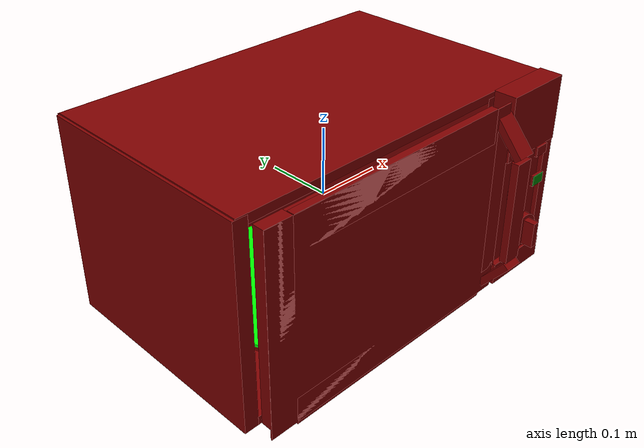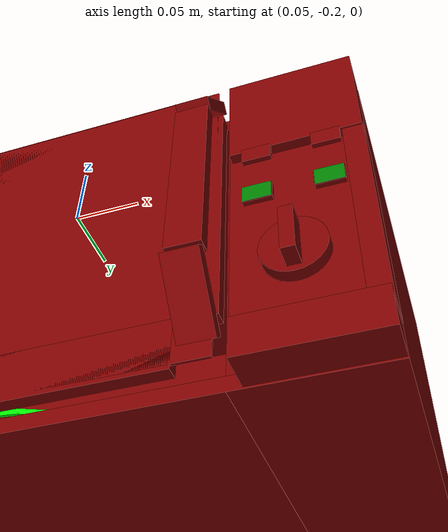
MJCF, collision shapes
<?xml version='1.0' encoding='UTF-8'?>
<mujoco model="model">
  <option timestep="0.002" gravity="0.0 0.0 -9.81"/>
  <compiler angle="radian"/>
  <asset>
    <mesh file="visuals/door.obj" name="door_vis"/>
    <mesh file="visuals/door_Clear.obj" name="door_Clear_vis"/>
    <mesh file="visuals/Body001.obj" name="Body001_vis"/>
    <mesh file="visuals/Button001.obj" name="Button001_vis"/>
    <mesh file="visuals/Button002.obj" name="Button002_vis"/>
    <mesh file="visuals/Button003.obj" name="Button003_vis"/>
    <mesh file="visuals/Button004.obj" name="Button004_vis"/>
    <mesh file="visuals/Disc001.obj" name="Disc001_vis"/>
    <mesh file="visuals/Knob001.obj" name="Knob001_vis"/>
    <texture file="visuals/T_BC001.png" name="Body001_material" type="2d"/>
    <material name="Body001_material" rgba="1 1 1 1.0" texture="Body001_material" shininess="0.4472135901451111" specular="0.5"/>
    <texture file="visuals/T_BC001.png" name="door_material" type="2d"/>
    <material name="door_material" rgba="1 1 1 1.0" texture="door_material" shininess="0.4472135901451111" specular="0.5"/>
    <texture file="visuals/T_BC001.png" name="door_Clear_material" type="2d"/>
    <material name="door_Clear_material" rgba="1 1 1 0.800000011920929" texture="door_Clear_material" shininess="0.5" specular="0.3103448502657381"/>
    <texture file="visuals/T_BC001.png" name="Button001_material" type="2d"/>
    <material name="Button001_material" rgba="1 1 1 1.0" texture="Button001_material" shininess="0.4472135901451111" specular="0.3103448502657381"/>
    <texture file="visuals/T_BC001.png" name="Button002_material" type="2d"/>
    <material name="Button002_material" rgba="1 1 1 1.0" texture="Button002_material" shininess="0.4472135901451111" specular="0.3103448502657381"/>
    <texture file="visuals/T_BC001.png" name="Button003_material" type="2d"/>
    <material name="Button003_material" rgba="1 1 1 1.0" texture="Button003_material" shininess="0.4472135901451111" specular="0.3103448502657381"/>
    <texture file="visuals/T_BC001.png" name="Button004_material" type="2d"/>
    <material name="Button004_material" rgba="1 1 1 1.0" texture="Button004_material" shininess="0.4472135901451111" specular="0.3103448502657381"/>
    <texture file="visuals/T_BC001.png" name="Disc001_material" type="2d"/>
    <material name="Disc001_material" rgba="1 1 1 1.0" texture="Disc001_material" shininess="0.4472135901451111" specular="0.3103448502657381"/>
    <texture file="visuals/T_BC001.png" name="Knob001_material" type="2d"/>
    <material name="Knob001_material" rgba="1 1 1 1.0" texture="Knob001_material" shininess="0.4472135901451111" specular="0.3103448502657381"/>
  </asset>
  <default>
    <default class="visual">
      <geom conaffinity="0" contype="0" group="1" type="mesh"/>
    </default>
    <default class="collision">
      <geom group="0" rgba="0.5 0 0 0.5"/>
    </default>
    <default class="spawn">
      <geom group="0" rgba="1 1 1 0.5" contype="0" conaffinity="0"/>
      <site group="0" rgba="1 1 1 0.5"/>
    </default>
    <default class="region">
      <geom group="1" conaffinity="0" contype="0" rgba="0 1 0 0"/>
    </default>
  </default>
  <worldbody>
    <body>
      <body name="object">
        <geom class="collision" type="box" pos="0.24530245 -0.18474417 -0.00084819" size="0.01147532183676958 0.00037641465314663947 0.007696379907429218" quat="1.0 0.0 0.0 0.0" name="stop_button" rgba="0.0 0.5 0 0.5"/>
        <geom class="collision" type="box" pos="0.18965234 -0.18474417 -0.00092461" size="0.01135633047670126 0.0003764147695619613 0.007696387358009815" quat="1.0 0.0 0.0 0.0" name="start_button" rgba="0.0 0.5 0 0.5"/>
        <geom class="collision" type="cylinder" pos="-0.04587882 0.00644161 -0.12600509" size="0.15269510447978973 0.002203373471274972" quat="1.0 0.0 0.0 0.0" name="tray" rgba="0 1 0 0.5"/>
        <geom mesh="Body001_vis" type="mesh" solimp="0.998 0.998 0.001" solref="0.001 1" friction="0.95 0.3 0.1" class="visual" material="Body001_material"/>
        <geom class="collision" type="box" pos="-0.00000033 0.02087716 -0.14168594" size="0.270497590303421 0.1695151925086975 0.006293192505836487" quat="1.0 0.0 0.0 0.0"/>
        <geom class="collision" type="box" pos="-0.26508177 0.02087716 -0.00042390" size="0.010282076895236969 0.1695151925086975 0.14755524694919586" quat="1.0 0.0 0.0 0.0"/>
        <geom class="collision" type="box" pos="0.21505618 0.02291021 -0.00219897" size="0.05994317680597305 0.17154823243618011 0.14578022062778473" quat="1.0 0.0 0.0 0.0"/>
        <geom class="collision" type="box" pos="-0.00100848 0.02087716 0.14228832" size="0.27037152647972107 0.1695151925086975 0.006612375378608704" quat="1.0 0.0 0.0 0.0"/>
        <geom class="collision" type="box" pos="0.22063820 -0.16458007 0.10133607" size="0.05399654433131218 0.017087683081626892 0.04787886515259743" quat="1.0 0.0 0.0 0.0"/>
        <geom class="collision" type="box" pos="0.22063820 -0.16458004 -0.13007501" size="0.05399654433131218 0.01708766631782055 0.01649109087884426" quat="1.0 0.0 0.0 0.0"/>
        <geom class="collision" type="box" pos="-0.00100848 0.18233631 -0.00044104" size="0.2703716456890106 0.012122089974582195 0.14753830432891846" quat="1.0 0.0 0.0 0.0"/>
        <geom class="collision" type="box" pos="0.26697474 -0.16409125 -0.03303166" size="0.008388441056013107 0.01605018973350525 0.08751650899648666" quat="1.0 0.0 0.0 0.0"/>
        <geom class="collision" type="box" pos="0.21887557 -0.16031169 -0.03033156" size="0.053996555507183075 0.012819316238164902 0.08907715976238251" quat="1.0 0.0 0.0 0.0"/>
        <geom class="collision" type="box" pos="-0.06366510 0.20426235 -0.00392596" size="0.1451033353805542 0.0117338253185153 0.08597654104232788" quat="1.0 0.0 0.0 0.0"/>
        <body name="door">
          <joint axis="0.0 0.0 1.0" pos="-0.26026035 -0.16744762 0.00186514" limited="true" name="microjoint" range="-1.5707963267948966 0.0" type="hinge" damping="1" frictionloss="1" armature=".01" stiffness="0.05"/>
          <geom mesh="door_vis" type="mesh" solimp="0.998 0.998 0.001" solref="0.001 1" friction="0.95 0.3 0.1" class="visual" material="door_material"/>
          <geom class="collision" type="box" pos="-0.24299918 -0.17345684 0.01021798" size="0.020003609359264374 0.008210886269807816 0.13691335916519165" quat="1.0 0.0 0.0 0.0"/>
          <geom class="collision" type="box" pos="0.14700438 -0.17628133 0.00162478" size="0.013788321055471897 0.005386426113545895 0.11066051572561264" quat="1.0 0.0 0.0 0.0"/>
          <geom class="collision" type="box" pos="-0.04683655 -0.17628130 0.12241681" size="0.1752554476261139 0.005386414937674999 0.02493886835873127" quat="1.0 0.0 0.0 0.0"/>
          <geom class="collision" type="box" pos="-0.04683655 -0.17628130 -0.12579626" size="0.1752554476261139 0.005386436358094215 0.02044999971985817" quat="1.0 0.0 0.0 0.0"/>
          <geom class="collision" type="box" pos="0.14700438 -0.21280455 0.00125856" size="0.013788320124149323 0.005523960571736097 0.07674762606620789" quat="1.0 0.0 0.0 0.0" name="door_handle_main"/>
          <geom class="collision" type="box" pos="0.14700438 -0.19603016 0.10612347" size="0.030615266412496567 0.005523992702364922 0.013788326643407345" quat="0.24476705491542816 0.6633921265602112 -0.24476711452007294 -0.6633920669555664"/>
          <geom class="collision" type="box" pos="0.14700442 -0.19950890 -0.10426458" size="0.030615264549851418 0.005523992236703634 0.013788326643407345" quat="0.23891746997833252 -0.6655211448669434 -0.23891784250736237 0.6655210852622986"/>
          <geom class="collision" type="box" pos="-0.04579961 -0.17555439 -0.00123525" size="0.1721935272216797 0.0055239698849618435 0.09503550827503204" quat="1.0 0.0 0.0 0.0"/>
          <geom class="collision" type="box" pos="-0.05312829 -0.18063208 0.00190358" size="0.2096550315618515 0.0010356524726375937 0.14462910592556" quat="1.0 0.0 0.0 0.0" name="door_main"/>
          <body name="door_Clear">
            <geom mesh="door_Clear_vis" type="mesh" solimp="0.998 0.998 0.001" solref="0.001 1" friction="0.95 0.3 0.1" class="visual" material="door_Clear_material"/>
            <geom class="collision" type="box" pos="-0.04579961 -0.17555439 -0.00123525" size="0.1721935272216797 0.0055239698849618435 0.09503550827503204" quat="1.0 0.0 0.0 0.0"/>
          </body>
        </body>
        <body name="Button001">
          <joint axis="0.0 1.0 0.0" pos="0.18998745 -0.18199044 0.04571490" limited="true" name="Button001_joint" range="0.0 0.002" type="slide" damping="1" frictionloss="1" armature=".01" stiffness="0.05"/>
          <geom mesh="Button001_vis" type="mesh" solimp="0.998 0.998 0.001" solref="0.001 1" friction="0.95 0.3 0.1" class="visual" material="Button001_material"/>
          <geom class="collision" type="box" pos="0.18969813 -0.18231680 0.04571744" size="0.011792760342359543 0.002033626427873969 0.0073335617780685425" quat="1.0 0.0 0.0 0.0"/>
        </body>
        <body name="Button002">
          <joint axis="0.0 1.0 0.0" pos="0.24536001 -0.18199044 0.04571490" limited="true" name="Button002_joint" range="0.0 0.002" type="slide" damping="1" frictionloss="1" armature=".01" stiffness="0.05"/>
          <geom mesh="Button002_vis" type="mesh" solimp="0.998 0.998 0.001" solref="0.001 1" friction="0.95 0.3 0.1" class="visual" material="Button002_material"/>
          <geom class="collision" type="box" pos="0.24556134 -0.18231680 0.04565675" size="0.011566855944693089 0.002033626427873969 0.007232360076159239" quat="1.0 0.0 0.0 0.0"/>
        </body>
        <body name="Button003">
          <joint axis="0.0 1.0 0.0" pos="0.24536001 -0.18199044 -0.00105814" limited="true" name="Button003_joint" range="0.0 0.002" type="slide" damping="1" frictionloss="1" armature=".01" stiffness="0.05"/>
          <geom mesh="Button003_vis" type="mesh" solimp="0.998 0.998 0.001" solref="0.001 1" friction="0.95 0.3 0.1" class="visual" material="Button003_material"/>
          <geom class="collision" type="box" pos="0.18987009 -0.18199071 -0.00096497" size="0.011792772449553013 0.002033626427873969 0.007797139696776867" quat="1.0 0.0 0.0 0.0"/>
        </body>
        <body name="Button004">
          <joint axis="0.0 1.0 0.0" pos="0.18998745 -0.18199044 -0.00105814" limited="true" name="Button004_joint" range="0.0 0.002" type="slide" damping="1" frictionloss="1" armature=".01" stiffness="0.05"/>
          <geom mesh="Button004_vis" type="mesh" solimp="0.998 0.998 0.001" solref="0.001 1" friction="0.95 0.3 0.1" class="visual" material="Button004_material"/>
          <geom class="collision" type="box" pos="0.24527473 -0.18199071 -0.00083853" size="0.011735443025827408 0.002033626427873969 0.0077550034038722515" quat="1.0 0.0 0.0 0.0"/>
        </body>
        <body name="Disc001">
          <joint axis="0.0 0.0 1.0" pos="-0.04587882 0.00644160 -0.12064270" limited="false" name="Disc001_joint" range="0 360" type="hinge" damping="1" frictionloss="1" armature=".01" stiffness="0.05"/>
          <geom mesh="Disc001_vis" type="mesh" solimp="0.998 0.998 0.001" solref="0.001 1" friction="0.95 0.3 0.1" class="visual" material="Disc001_material"/>
          <geom class="collision" type="cylinder" pos="-0.04587882 0.00644161 -0.13172408" size="0.15269510447978973 0.001715060556307435" quat="1.0 0.0 0.0 0.0"/>
        </body>
        <body name="Knob001">
          <joint axis="0.0 1.0 0.0" pos="0.21610109 -0.20078566 -0.07113618" limited="true" name="Knob001_joint" range="0.0 3.14" type="hinge" damping="0.05" frictionloss="0.75" armature="0.5"/>
          <geom mesh="Knob001_vis" type="mesh" solimp="0.998 0.998 0.001" solref="0.001 1" friction="0.95 0.3 0.1" class="visual" material="Knob001_material"/>
          <geom class="collision" type="cylinder" pos="0.21615134 -0.18720479 -0.07066536" friction="100 0.5 0.01" size="0.025046654045581818 0.005002561025321484" quat="0.7071068286895752 0.7071067690849304 0.0 0.0"/>
          <geom class="collision" type="box" pos="0.21610109 -0.20078566 -0.07113618" friction="100 0.5 0.01" size="0.005244156811386347 0.008835172280669212 0.019409475848078728" quat="1.0 0.0 0.0 0.0"/>
        </body>
        <geom class="region" name="reg_int" type="box" pos="-0.049457455 0.011390365 0.0029375399999999954" size="0.199002195 0.154052955 0.12773925"/>
        <geom class="region" name="reg_main" type="box" pos="-3.1500000000073136e-07 0.017164275000000007 -4.999999997368221e-09" size="0.276363535 0.199832005 0.150214905"/>
      <geom class="region" name="reg_tray" type="cylinder" pos="-0.04587882 0.00644161 0.0034375367356374864" size="0.15269510447978973 0.1262392532643625"/></body>
    </body>
  </worldbody>
  <actuator>
    <motor name="microjoint_actuator" joint="microjoint" gear="10"/>
    <motor name="Button001_joint_actuator" joint="Button001_joint" gear="0.4"/>
    <motor name="Button002_joint_actuator" joint="Button002_joint" gear="0.4"/>
    <motor name="Button003_joint_actuator" joint="Button003_joint" gear="0.4"/>
    <motor name="Button004_joint_actuator" joint="Button004_joint" gear="0.4"/>
    <motor name="Disc001_joint_actuator" joint="Disc001_joint" gear="10"/>
    <motor name="Knob001_joint_actuator" joint="Knob001_joint" gear="10"/>
  </actuator>
</mujoco>
